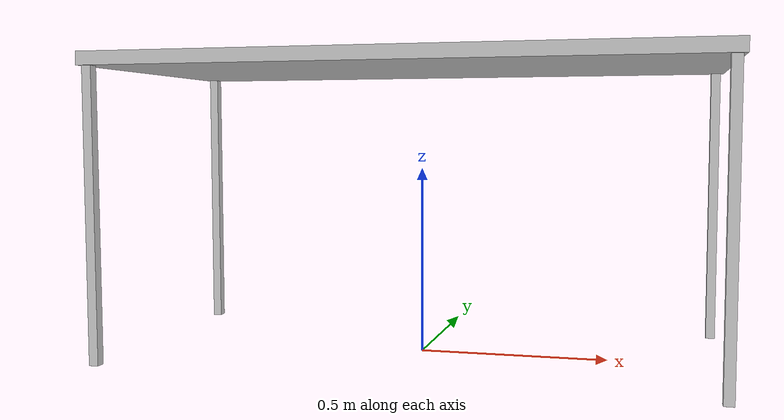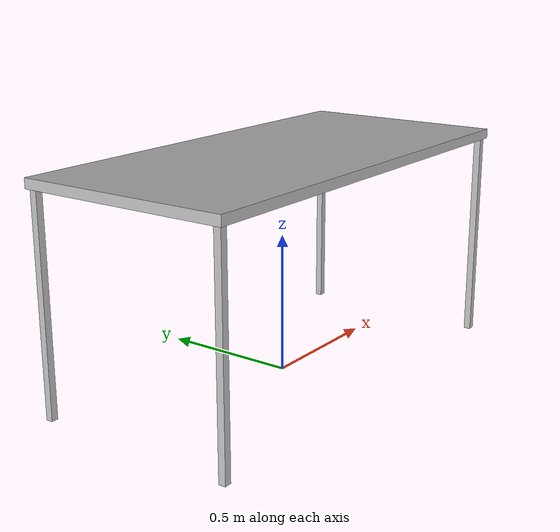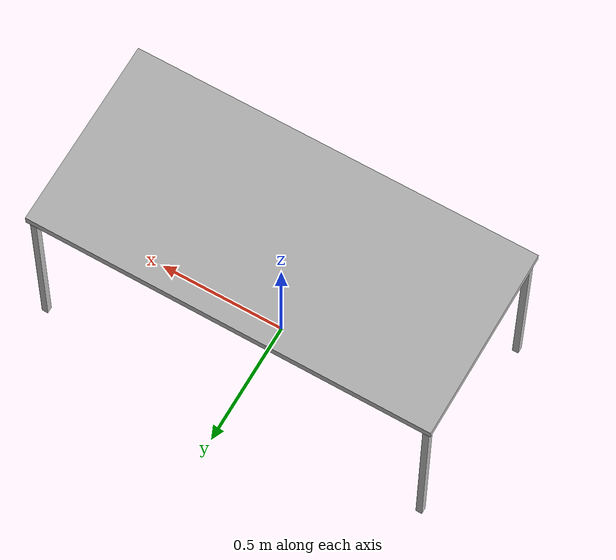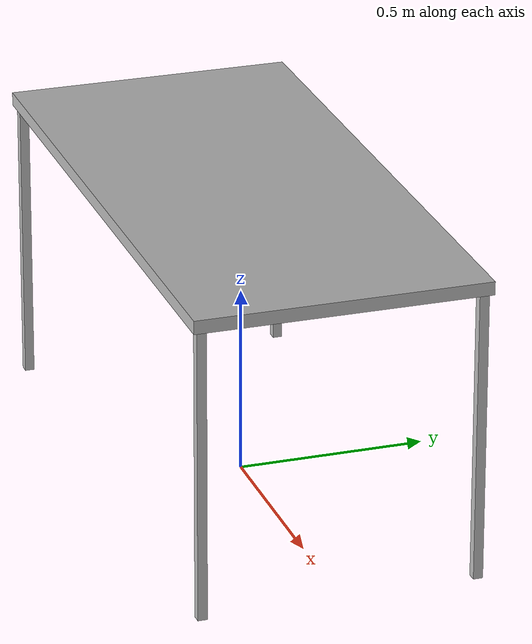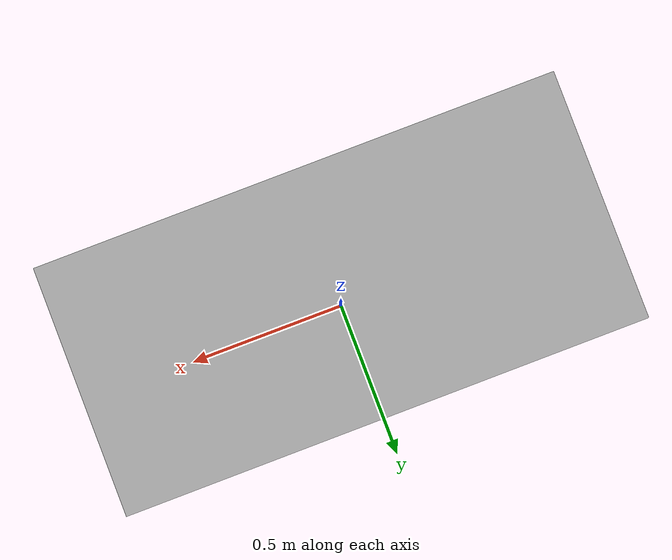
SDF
<?xml version="1.0"?>
<sdf version="1.6">
  <model name="rwc2017/table_dinner">
    <link name="1_link">
      <collision name="1_col">
        <geometry>
          <box>
            <size>1.6 0.76 0.035</size>
          </box>
        </geometry>
      </collision>
      <visual name="1_vis">
        <geometry>
          <box>
            <size>1.6 0.76 0.035</size>
          </box>
        </geometry>
      </visual>
      <pose>0 0 0.7825 0 0 0</pose>
    </link>
    <link name="2_link">
      <collision name="2_col">
        <geometry>
          <box>
            <size>0.025 0.025 0.765</size>
          </box>
        </geometry>
      </collision>
      <visual name="2_vis">
        <geometry>
          <box>
            <size>0.025 0.025 0.765</size>
          </box>
        </geometry>
      </visual>
      <pose>-0.7775 -0.3575 0.3825 0 0 0</pose>
    </link>
    <link name="3_link">
      <collision name="3_col">
        <geometry>
          <box>
            <size>0.025 0.025 0.765</size>
          </box>
        </geometry>
      </collision>
      <visual name="3_vis">
        <geometry>
          <box>
            <size>0.025 0.025 0.765</size>
          </box>
        </geometry>
      </visual>
      <pose>0.7775 -0.3575 0.3825 0 0 0</pose>
    </link>
    <link name="4_link">
      <collision name="4_col">
        <geometry>
          <box>
            <size>0.025 0.025 0.765</size>
          </box>
        </geometry>
      </collision>
      <visual name="4_vis">
        <geometry>
          <box>
            <size>0.025 0.025 0.765</size>
          </box>
        </geometry>
      </visual>
      <pose>-0.7775 0.3575 0.3825 0 0 0</pose>
    </link>
    <link name="5_link">
      <collision name="5_col">
        <geometry>
          <box>
            <size>0.025 0.025 0.765</size>
          </box>
        </geometry>
      </collision>
      <visual name="5_vis">
        <geometry>
          <box>
            <size>0.025 0.025 0.765</size>
          </box>
        </geometry>
      </visual>
      <pose>0.7775 0.3575 0.3825 0 0 0</pose>
    </link>
    <link name="on_top_of">
      <virtual_volume name="on_top_of_vv">
        <geometry>
          <box>
            <size>0.4 0.7 0.25</size>
          </box>
        </geometry>
        <pose>0.59 0.0 0.945 0 0 0</pose>
      </virtual_volume>
    </link>
    <link name="on_top_of_back">
      <virtual_volume name="on_top_of_back_vv">
        <geometry>
          <box>
            <size>0.4 0.7 0.25</size>
          </box>
        </geometry>
        <pose>-0.59 0.0 0.945 0 0 0</pose>
      </virtual_volume>
    </link>
    <link name="in_front_of">
      <virtual_volume name="in_front_of_vv">
        <geometry>
          <box>
            <size>0.3 0.56 0.01</size>
          </box>
        </geometry>
        <pose>1.55 0.0 0.005 0 0 0</pose>
      </virtual_volume>
    </link>
    <static>true</static>
  </model>
</sdf>
